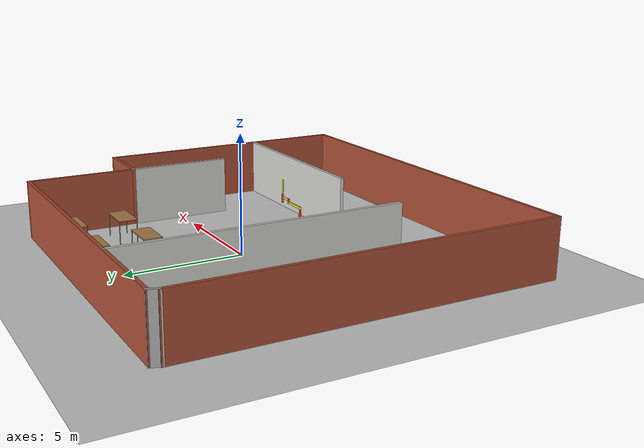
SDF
<sdf version="1.6">
 <world name="default">
  <model name="ground_plane">
   <static>1</static>
   <link name="link">
    <collision name="collision">
     <geometry><plane><normal>0 0 1</normal><size>100 100</size></plane></geometry>
     <surface>
      <contact><collide_bitmask>65535</collide_bitmask></contact>
      <friction><ode><mu>100</mu><mu2>50</mu2></ode></friction>
     </surface>
    </collision>
    <visual name="visual">
     <cast_shadows>0</cast_shadows>
     <geometry><plane><normal>0 0 1</normal><size>100 100</size></plane></geometry>
     <material>
      <script><uri>file://media/materials/scripts/gazebo.material</uri><name>Gazebo/Grey</name></script>
     </material>
    </visual>
   </link>
  </model>
  <model name="gcamp_small_building">
   <pose>0.46855 -1.10251 0 0 -0 0</pose>
   <link name="Wall_11">
    <collision name="Wall_11_Collision">
     <geometry><box><size>12 0.15 2.5</size></box></geometry>
     <pose>0 0 1.25 0 -0 0</pose>
    </collision>
    <visual name="Wall_11_Visual">
     <pose>0 0 1.25 0 -0 0</pose>
     <geometry><box><size>12 0.15 2.5</size></box></geometry>
     <material>
      <script><uri>file://media/materials/scripts/gazebo.material</uri><name>Gazebo/CeilingTiled</name></script>
      <ambient>1 1 1 1</ambient>
     </material>
     <meta><layer>0</layer></meta>
    </visual>
    <pose>-4.16991 2.00561 0 0 -0 -1.5708</pose>
   </link>
   <link name="Wall_13">
    <collision name="Wall_13_Collision">
     <geometry><box><size>8.5 0.15 2.5</size></box></geometry>
     <pose>0 0 1.25 0 -0 0</pose>
    </collision>
    <visual name="Wall_13_Visual">
     <pose>0 0 1.25 0 -0 0</pose>
     <geometry><box><size>8.5 0.15 2.5</size></box></geometry>
     <material>
      <script><uri>file://media/materials/scripts/gazebo.material</uri><name>Gazebo/CeilingTiled</name></script>
      <ambient>1 1 1 1</ambient>
     </material>
     <meta><layer>0</layer></meta>
    </visual>
    <pose>4.29338 -3.92287 0 0 -0 0</pose>
   </link>
   <link name="Wall_15">
    <collision name="Wall_15_Collision">
     <geometry><box><size>4.5 0.15 2.5</size></box></geometry>
     <pose>0 0 1.25 0 -0 0</pose>
    </collision>
    <visual name="Wall_15_Visual">
     <pose>0 0 1.25 0 -0 0</pose>
     <geometry><box><size>4.5 0.15 2.5</size></box></geometry>
     <material>
      <script><uri>file://media/materials/scripts/gazebo.material</uri><name>Gazebo/CeilingTiled</name></script>
      <ambient>1 1 1 1</ambient>
     </material>
     <meta><layer>0</layer></meta>
    </visual>
    <pose>5.8051 1.18826 0 0 -0 -1.5708</pose>
   </link>
   <link name="Wall_3">
    <collision name="Wall_3_Collision">
     <geometry><box><size>15.75 0.15 2.5</size></box></geometry>
     <pose>0 0 1.25 0 -0 0</pose>
    </collision>
    <visual name="Wall_3_Visual">
     <pose>0 0 1.25 0 -0 0</pose>
     <geometry><box><size>15.75 0.15 2.5</size></box></geometry>
     <material>
      <script><uri>file://media/materials/scripts/gazebo.material</uri><name>Gazebo/Bricks</name></script>
      <ambient>1 1 1 1</ambient>
     </material>
     <meta><layer>0</layer></meta>
    </visual>
    <pose>-8.4449 -0.18674 0 0 -0 -1.5708</pose>
   </link>
   <link name="Wall_4">
    <collision name="Wall_4_Collision">
     <geometry><box><size>17 0.15 2.5</size></box></geometry>
     <pose>0 0 1.25 0 -0 0</pose>
    </collision>
    <visual name="Wall_4_Visual">
     <pose>0 0 1.25 0 -0 0</pose>
     <geometry><box><size>17 0.15 2.5</size></box></geometry>
     <material>
      <script><uri>file://media/materials/scripts/gazebo.material</uri><name>Gazebo/Bricks</name></script>
      <ambient>1 1 1 1</ambient>
     </material>
     <meta><layer>0</layer></meta>
    </visual>
    <pose>-0.019899 -7.98674 0 0 -0 0</pose>
   </link>
   <link name="Wall_5">
    <collision name="Wall_5_Collision">
     <geometry><box><size>11.5 0.15 2.5</size></box></geometry>
     <pose>0 0 1.25 0 -0 0</pose>
    </collision>
    <visual name="Wall_5_Visual">
     <pose>0 0 1.25 0 -0 0</pose>
     <geometry><box><size>11.5 0.15 2.5</size></box></geometry>
     <material>
      <script><uri>file://media/materials/scripts/gazebo.material</uri><name>Gazebo/Bricks</name></script>
      <ambient>1 1 1 1</ambient>
     </material>
     <meta><layer>0</layer></meta>
    </visual>
    <pose>8.4051 -2.31174 0 0 -0 1.5708</pose>
   </link>
   <link name="Wall_6">
    <collision name="Wall_6_Collision">
     <geometry><box><size>2.75 0.15 2.5</size></box></geometry>
     <pose>0 0 1.25 0 -0 0</pose>
    </collision>
    <visual name="Wall_6_Visual">
     <pose>0 0 1.25 0 -0 0</pose>
     <geometry><box><size>2.75 0.15 2.5</size></box></geometry>
     <material>
      <script><uri>file://media/materials/scripts/gazebo.material</uri><name>Gazebo/Bricks</name></script>
      <ambient>1 1 1 1</ambient>
     </material>
     <meta><layer>0</layer></meta>
    </visual>
    <pose>7.1051 3.36326 0 0 -0 3.14159</pose>
   </link>
   <link name="Wall_7">
    <collision name="Wall_7_Collision">
     <geometry><box><size>4.75 0.15 2.5</size></box></geometry>
     <pose>0 0 1.25 0 -0 0</pose>
    </collision>
    <visual name="Wall_7_Visual">
     <pose>0 0 1.25 0 -0 0</pose>
     <geometry><box><size>4.75 0.15 2.5</size></box></geometry>
     <material>
      <script><uri>file://media/materials/scripts/gazebo.material</uri><name>Gazebo/Bricks</name></script>
      <ambient>1 1 1 1</ambient>
     </material>
     <meta><layer>0</layer></meta>
    </visual>
    <pose>5.8051 5.66326 0 0 -0 1.5708</pose>
   </link>
   <link name="Wall_8">
    <collision name="Wall_8_Collision">
     <geometry><box><size>14.25 0.15 2.5</size></box></geometry>
     <pose>0 0 1.25 0 -0 0</pose>
    </collision>
    <visual name="Wall_8_Visual">
     <pose>0 0 1.25 0 -0 0</pose>
     <geometry><box><size>14.25 0.15 2.5</size></box></geometry>
     <material>
      <script><uri>file://media/materials/scripts/gazebo.material</uri><name>Gazebo/Bricks</name></script>
      <ambient>1 1 1 1</ambient>
     </material>
     <meta><layer>0</layer></meta>
    </visual>
    <pose>-1.2449 7.96326 0 0 -0 3.14159</pose>
   </link>
   <link name="Wall_9">
    <collision name="Wall_9_Collision">
     <geometry><box><size>0.530789 0.15 2.5</size></box></geometry>
     <pose>0 0 1.25 0 -0 0</pose>
    </collision>
    <visual name="Wall_9_Visual">
     <pose>0 0 1.25 0 -0 0</pose>
     <geometry><box><size>0.530789 0.15 2.5</size></box></geometry>
     <material>
      <script><uri>file://media/materials/scripts/gazebo.material</uri><name>Gazebo/Grey</name></script>
      <ambient>1 1 1 1</ambient>
     </material>
     <meta><layer>0</layer></meta>
    </visual>
    <pose>-8.3699 7.78826 0 0 -0 -1.97569</pose>
   </link>
   <static>1</static>
  </model>
  <model name="table">
   <static>1</static>
   <link name="link">
    <collision name="surface">
     <pose>0 0 1 0 -0 0</pose>
     <geometry><box><size>1.5 0.8 0.03</size></box></geometry>
     <surface><friction><ode><mu>0.6</mu><mu2>0.6</mu2></ode></friction></surface>
    </collision>
    <visual name="visual1">
     <pose>0 0 1 0 -0 0</pose>
     <geometry><box><size>1.5 0.8 0.03</size></box></geometry>
     <material>
      <script><uri>file://media/materials/scripts/gazebo.material</uri><name>Gazebo/Wood</name></script>
     </material>
    </visual>
    <collision name="front_left_leg">
     <pose>0.68 0.38 0.5 0 -0 0</pose>
     <geometry><cylinder><radius>0.02</radius><length>1</length></cylinder></geometry>
    </collision>
    <visual name="front_left_leg">
     <pose>0.68 0.38 0.5 0 -0 0</pose>
     <geometry><cylinder><radius>0.02</radius><length>1</length></cylinder></geometry>
     <material>
      <script><uri>file://media/materials/scripts/gazebo.material</uri><name>Gazebo/Grey</name></script>
     </material>
    </visual>
    <collision name="front_right_leg">
     <pose>0.68 -0.38 0.5 0 -0 0</pose>
     <geometry><cylinder><radius>0.02</radius><length>1</length></cylinder></geometry>
    </collision>
    <visual name="front_right_leg">
     <pose>0.68 -0.38 0.5 0 -0 0</pose>
     <geometry><cylinder><radius>0.02</radius><length>1</length></cylinder></geometry>
     <material>
      <script><uri>file://media/materials/scripts/gazebo.material</uri><name>Gazebo/Grey</name></script>
     </material>
    </visual>
    <collision name="back_right_leg">
     <pose>-0.68 -0.38 0.5 0 -0 0</pose>
     <geometry><cylinder><radius>0.02</radius><length>1</length></cylinder></geometry>
    </collision>
    <visual name="back_right_leg">
     <pose>-0.68 -0.38 0.5 0 -0 0</pose>
     <geometry><cylinder><radius>0.02</radius><length>1</length></cylinder></geometry>
     <material>
      <script><uri>file://media/materials/scripts/gazebo.material</uri><name>Gazebo/Grey</name></script>
     </material>
    </visual>
    <collision name="back_left_leg">
     <pose>-0.68 0.38 0.5 0 -0 0</pose>
     <geometry><cylinder><radius>0.02</radius><length>1</length></cylinder></geometry>
    </collision>
    <visual name="back_left_leg">
     <pose>-0.68 0.38 0.5 0 -0 0</pose>
     <geometry><cylinder><radius>0.02</radius><length>1</length></cylinder></geometry>
     <material>
      <script><uri>file://media/materials/scripts/gazebo.material</uri><name>Gazebo/Grey</name></script>
     </material>
    </visual>
   </link>
   <pose>4.38563 5.61757 0 0 -0 0</pose>
  </model>
  <model name="table_0">
   <static>1</static>
   <link name="link">
    <collision name="surface">
     <pose>0 0 1 0 -0 0</pose>
     <geometry><box><size>1.5 0.8 0.03</size></box></geometry>
     <surface><friction><ode><mu>0.6</mu><mu2>0.6</mu2></ode></friction></surface>
    </collision>
    <visual name="visual1">
     <pose>0 0 1 0 -0 0</pose>
     <geometry><box><size>1.5 0.8 0.03</size></box></geometry>
     <material>
      <script><uri>file://media/materials/scripts/gazebo.material</uri><name>Gazebo/Wood</name></script>
     </material>
    </visual>
    <collision name="front_left_leg">
     <pose>0.68 0.38 0.5 0 -0 0</pose>
     <geometry><cylinder><radius>0.02</radius><length>1</length></cylinder></geometry>
    </collision>
    <visual name="front_left_leg">
     <pose>0.68 0.38 0.5 0 -0 0</pose>
     <geometry><cylinder><radius>0.02</radius><length>1</length></cylinder></geometry>
     <material>
      <script><uri>file://media/materials/scripts/gazebo.material</uri><name>Gazebo/Grey</name></script>
     </material>
    </visual>
    <collision name="front_right_leg">
     <pose>0.68 -0.38 0.5 0 -0 0</pose>
     <geometry><cylinder><radius>0.02</radius><length>1</length></cylinder></geometry>
    </collision>
    <visual name="front_right_leg">
     <pose>0.68 -0.38 0.5 0 -0 0</pose>
     <geometry><cylinder><radius>0.02</radius><length>1</length></cylinder></geometry>
     <material>
      <script><uri>file://media/materials/scripts/gazebo.material</uri><name>Gazebo/Grey</name></script>
     </material>
    </visual>
    <collision name="back_right_leg">
     <pose>-0.68 -0.38 0.5 0 -0 0</pose>
     <geometry><cylinder><radius>0.02</radius><length>1</length></cylinder></geometry>
    </collision>
    <visual name="back_right_leg">
     <pose>-0.68 -0.38 0.5 0 -0 0</pose>
     <geometry><cylinder><radius>0.02</radius><length>1</length></cylinder></geometry>
     <material>
      <script><uri>file://media/materials/scripts/gazebo.material</uri><name>Gazebo/Grey</name></script>
     </material>
    </visual>
    <collision name="back_left_leg">
     <pose>-0.68 0.38 0.5 0 -0 0</pose>
     <geometry><cylinder><radius>0.02</radius><length>1</length></cylinder></geometry>
    </collision>
    <visual name="back_left_leg">
     <pose>-0.68 0.38 0.5 0 -0 0</pose>
     <geometry><cylinder><radius>0.02</radius><length>1</length></cylinder></geometry>
     <material>
      <script><uri>file://media/materials/scripts/gazebo.material</uri><name>Gazebo/Grey</name></script>
     </material>
    </visual>
   </link>
   <pose>4.35793 3.48172 0 0 -0 0</pose>
  </model>
  <model name="bookshelf">
   <static>1</static>
   <link name="link">
    <inertial><mass>1</mass></inertial>
    <collision name="back">
     <pose>0 0.005 0.6 0 -0 0</pose>
     <geometry><box><size>0.9 0.01 1.2</size></box></geometry>
    </collision>
    <visual name="visual1">
     <pose>0 0.005 0.6 0 -0 0</pose>
     <geometry><box><size>0.9 0.01 1.2</size></box></geometry>
     <material>
      <script><uri>file://media/materials/scripts/gazebo.material</uri><name>Gazebo/Wood</name></script>
     </material>
    </visual>
    <collision name="left_side">
     <pose>0.45 -0.195 0.6 0 -0 0</pose>
     <geometry><box><size>0.02 0.4 1.2</size></box></geometry>
    </collision>
    <visual name="visual2">
     <pose>0.45 -0.195 0.6 0 -0 0</pose>
     <geometry><box><size>0.02 0.4 1.2</size></box></geometry>
     <material>
      <script><uri>file://media/materials/scripts/gazebo.material</uri><name>Gazebo/Wood</name></script>
     </material>
    </visual>
    <collision name="right_side">
     <pose>-0.45 -0.195 0.6 0 -0 0</pose>
     <geometry><box><size>0.02 0.4 1.2</size></box></geometry>
    </collision>
    <visual name="visual3">
     <pose>-0.45 -0.195 0.6 0 -0 0</pose>
     <geometry><box><size>0.02 0.4 1.2</size></box></geometry>
     <material>
      <script><uri>file://media/materials/scripts/gazebo.material</uri><name>Gazebo/Wood</name></script>
     </material>
    </visual>
    <collision name="bottom">
     <pose>0 -0.195 0.03 0 -0 0</pose>
     <geometry><box><size>0.88 0.4 0.06</size></box></geometry>
    </collision>
    <visual name="visual4">
     <pose>0 -0.195 0.03 0 -0 0</pose>
     <geometry><box><size>0.88 0.4 0.06</size></box></geometry>
     <material>
      <script><uri>file://media/materials/scripts/gazebo.material</uri><name>Gazebo/Wood</name></script>
     </material>
    </visual>
    <collision name="top">
     <pose>0 -0.195 1.19 0 -0 0</pose>
     <geometry><box><size>0.88 0.4 0.02</size></box></geometry>
    </collision>
    <visual name="visual5">
     <pose>0 -0.195 1.19 0 -0 0</pose>
     <geometry><box><size>0.88 0.4 0.02</size></box></geometry>
     <material>
      <script><uri>file://media/materials/scripts/gazebo.material</uri><name>Gazebo/Wood</name></script>
     </material>
    </visual>
    <collision name="low_shelf">
     <pose>0 -0.195 0.43 0 -0 0</pose>
     <geometry><box><size>0.88 0.4 0.02</size></box></geometry>
    </collision>
    <visual name="visual6">
     <pose>0 -0.195 0.43 0 -0 0</pose>
     <geometry><box><size>0.88 0.4 0.02</size></box></geometry>
     <material>
      <script><uri>file://media/materials/scripts/gazebo.material</uri><name>Gazebo/Wood</name></script>
     </material>
    </visual>
    <collision name="high_shelf">
     <pose>0 -0.195 0.8 0 -0 0</pose>
     <geometry><box><size>0.88 0.4 0.02</size></box></geometry>
    </collision>
    <visual name="visual7">
     <pose>0 -0.195 0.8 0 -0 0</pose>
     <geometry><box><size>0.88 0.4 0.02</size></box></geometry>
     <material>
      <script><uri>file://media/materials/scripts/gazebo.material</uri><name>Gazebo/Wood</name></script>
     </material>
    </visual>
   </link>
   <pose>0.151486 6.62816 0 0 -0 0</pose>
  </model>
  <model name="table_1">
   <static>1</static>
   <link name="link">
    <collision name="surface">
     <pose>0 0 1 0 -0 0</pose>
     <geometry><box><size>1.5 0.8 0.03</size></box></geometry>
     <surface><friction><ode><mu>0.6</mu><mu2>0.6</mu2></ode></friction></surface>
    </collision>
    <visual name="visual1">
     <pose>0 0 1 0 -0 0</pose>
     <geometry><box><size>1.5 0.8 0.03</size></box></geometry>
     <material>
      <script><uri>file://media/materials/scripts/gazebo.material</uri><name>Gazebo/Wood</name></script>
     </material>
    </visual>
    <collision name="front_left_leg">
     <pose>0.68 0.38 0.5 0 -0 0</pose>
     <geometry><cylinder><radius>0.02</radius><length>1</length></cylinder></geometry>
    </collision>
    <visual name="front_left_leg">
     <pose>0.68 0.38 0.5 0 -0 0</pose>
     <geometry><cylinder><radius>0.02</radius><length>1</length></cylinder></geometry>
     <material>
      <script><uri>file://media/materials/scripts/gazebo.material</uri><name>Gazebo/Grey</name></script>
     </material>
    </visual>
    <collision name="front_right_leg">
     <pose>0.68 -0.38 0.5 0 -0 0</pose>
     <geometry><cylinder><radius>0.02</radius><length>1</length></cylinder></geometry>
    </collision>
    <visual name="front_right_leg">
     <pose>0.68 -0.38 0.5 0 -0 0</pose>
     <geometry><cylinder><radius>0.02</radius><length>1</length></cylinder></geometry>
     <material>
      <script><uri>file://media/materials/scripts/gazebo.material</uri><name>Gazebo/Grey</name></script>
     </material>
    </visual>
    <collision name="back_right_leg">
     <pose>-0.68 -0.38 0.5 0 -0 0</pose>
     <geometry><cylinder><radius>0.02</radius><length>1</length></cylinder></geometry>
    </collision>
    <visual name="back_right_leg">
     <pose>-0.68 -0.38 0.5 0 -0 0</pose>
     <geometry><cylinder><radius>0.02</radius><length>1</length></cylinder></geometry>
     <material>
      <script><uri>file://media/materials/scripts/gazebo.material</uri><name>Gazebo/Grey</name></script>
     </material>
    </visual>
    <collision name="back_left_leg">
     <pose>-0.68 0.38 0.5 0 -0 0</pose>
     <geometry><cylinder><radius>0.02</radius><length>1</length></cylinder></geometry>
    </collision>
    <visual name="back_left_leg">
     <pose>-0.68 0.38 0.5 0 -0 0</pose>
     <geometry><cylinder><radius>0.02</radius><length>1</length></cylinder></geometry>
     <material>
      <script><uri>file://media/materials/scripts/gazebo.material</uri><name>Gazebo/Grey</name></script>
     </material>
    </visual>
   </link>
   <pose>1.54863 5.60652 0 0 -0 0</pose>
  </model>
  <model name="table_2">
   <static>1</static>
   <link name="link">
    <collision name="surface">
     <pose>0 0 1 0 -0 0</pose>
     <geometry><box><size>1.5 0.8 0.03</size></box></geometry>
     <surface><friction><ode><mu>0.6</mu><mu2>0.6</mu2></ode></friction></surface>
    </collision>
    <visual name="visual1">
     <pose>0 0 1 0 -0 0</pose>
     <geometry><box><size>1.5 0.8 0.03</size></box></geometry>
     <material>
      <script><uri>file://media/materials/scripts/gazebo.material</uri><name>Gazebo/Wood</name></script>
     </material>
    </visual>
    <collision name="front_left_leg">
     <pose>0.68 0.38 0.5 0 -0 0</pose>
     <geometry><cylinder><radius>0.02</radius><length>1</length></cylinder></geometry>
    </collision>
    <visual name="front_left_leg">
     <pose>0.68 0.38 0.5 0 -0 0</pose>
     <geometry><cylinder><radius>0.02</radius><length>1</length></cylinder></geometry>
     <material>
      <script><uri>file://media/materials/scripts/gazebo.material</uri><name>Gazebo/Grey</name></script>
     </material>
    </visual>
    <collision name="front_right_leg">
     <pose>0.68 -0.38 0.5 0 -0 0</pose>
     <geometry><cylinder><radius>0.02</radius><length>1</length></cylinder></geometry>
    </collision>
    <visual name="front_right_leg">
     <pose>0.68 -0.38 0.5 0 -0 0</pose>
     <geometry><cylinder><radius>0.02</radius><length>1</length></cylinder></geometry>
     <material>
      <script><uri>file://media/materials/scripts/gazebo.material</uri><name>Gazebo/Grey</name></script>
     </material>
    </visual>
    <collision name="back_right_leg">
     <pose>-0.68 -0.38 0.5 0 -0 0</pose>
     <geometry><cylinder><radius>0.02</radius><length>1</length></cylinder></geometry>
    </collision>
    <visual name="back_right_leg">
     <pose>-0.68 -0.38 0.5 0 -0 0</pose>
     <geometry><cylinder><radius>0.02</radius><length>1</length></cylinder></geometry>
     <material>
      <script><uri>file://media/materials/scripts/gazebo.material</uri><name>Gazebo/Grey</name></script>
     </material>
    </visual>
    <collision name="back_left_leg">
     <pose>-0.68 0.38 0.5 0 -0 0</pose>
     <geometry><cylinder><radius>0.02</radius><length>1</length></cylinder></geometry>
    </collision>
    <visual name="back_left_leg">
     <pose>-0.68 0.38 0.5 0 -0 0</pose>
     <geometry><cylinder><radius>0.02</radius><length>1</length></cylinder></geometry>
     <material>
      <script><uri>file://media/materials/scripts/gazebo.material</uri><name>Gazebo/Grey</name></script>
     </material>
    </visual>
   </link>
   <pose>1.5944 3.43185 0 0 -0 0</pose>
  </model>
  <model name="cabinet_0">
   <static>1</static>
   <link name="cabinet_bottom_plate">
    <inertial>
     <pose>0 0 -1 0 -0 0</pose>
     <inertia><ixx>2.05</ixx><ixy>0</ixy><ixz>0</ixz><iyy>2.05</iyy><iyz>0</iyz><izz>2.05</izz></inertia>
     <mass>25</mass>
    </inertial>
    <collision name="cabinet_bottom_plate_geom">
     <pose>0 0 0.01 0 -0 0</pose>
     <geometry><box><size>0.45 0.45 0.02</size></box></geometry>
    </collision>
    <visual name="cabinet_bottom_plate_geom_visual">
     <pose>0 0 0.01 0 -0 0</pose>
     <geometry><box><size>0.45 0.45 0.02</size></box></geometry>
     <material>
      <script><uri>file://media/materials/scripts/gazebo.material</uri><name>Gazebo/Wood</name></script>
     </material>
    </visual>
    <collision name="cabinet_bottom_plate_geom_cabinet_back_plate">
     <pose>0.235 0 0.51 0 -0 0</pose>
     <geometry><box><size>0.02 0.45 1.02</size></box></geometry>
    </collision>
    <visual name="cabinet_bottom_plate_geom_cabinet_back_plate_visual">
     <pose>0.235 0 0.51 0 -0 0</pose>
     <geometry><box><size>0.02 0.45 1.02</size></box></geometry>
     <material>
      <script><uri>file://media/materials/scripts/gazebo.material</uri><name>Gazebo/Wood</name></script>
     </material>
    </visual>
    <collision name="cabinet_bottom_plate_geom_cabinet_left_plate">
     <pose>0 0.235 0.51 0 -0 0</pose>
     <geometry><box><size>0.45 0.02 1.02</size></box></geometry>
    </collision>
    <visual name="cabinet_bottom_plate_geom_cabinet_left_plate_visual">
     <pose>0 0.235 0.51 0 -0 0</pose>
     <geometry><box><size>0.45 0.02 1.02</size></box></geometry>
     <material>
      <script><uri>file://media/materials/scripts/gazebo.material</uri><name>Gazebo/Wood</name></script>
     </material>
    </visual>
    <collision name="cabinet_bottom_plate_geom_cabinet_middle_plate">
     <pose>0 0 0.51 0 -0 0</pose>
     <geometry><box><size>0.45 0.45 0.02</size></box></geometry>
    </collision>
    <visual name="cabinet_bottom_plate_geom_cabinet_middle_plate_visual">
     <pose>0 0 0.51 0 -0 0</pose>
     <geometry><box><size>0.45 0.45 0.02</size></box></geometry>
     <material>
      <script><uri>file://media/materials/scripts/gazebo.material</uri><name>Gazebo/Wood</name></script>
     </material>
    </visual>
    <collision name="cabinet_bottom_plate_geom_cabinet_right_plate">
     <pose>0 -0.235 0.51 0 -0 0</pose>
     <geometry><box><size>0.45 0.02 1.02</size></box></geometry>
    </collision>
    <visual name="cabinet_bottom_plate_geom_cabinet_right_plate_visual">
     <pose>0 -0.235 0.51 0 -0 0</pose>
     <geometry><box><size>0.45 0.02 1.02</size></box></geometry>
     <material>
      <script><uri>file://media/materials/scripts/gazebo.material</uri><name>Gazebo/Wood</name></script>
     </material>
    </visual>
    <collision name="cabinet_bottom_plate_geom_cabinet_top_plate">
     <pose>0 0 1.01 0 -0 0</pose>
     <geometry><box><size>0.45 0.45 0.02</size></box></geometry>
    </collision>
    <visual name="cabinet_bottom_plate_geom_cabinet_top_plate_visual">
     <pose>0 0 1.01 0 -0 0</pose>
     <geometry><box><size>0.45 0.45 0.02</size></box></geometry>
     <material>
      <script><uri>file://media/materials/scripts/gazebo.material</uri><name>Gazebo/Wood</name></script>
     </material>
    </visual>
   </link>
   <pose>-1.07996 6.47759 0 0 -0 0</pose>
  </model>
  <model name="simple_arm">
   <link name="arm_base">
    <inertial>
     <pose>0 0 0.00099 0 -0 0</pose>
     <inertia><ixx>1.11</ixx><ixy>0</ixy><ixz>0</ixz><iyy>100.11</iyy><iyz>0</iyz><izz>1.01</izz></inertia>
     <mass>101</mass>
    </inertial>
    <collision name="arm_base_geom">
     <pose>0 0 0.05 0 -0 0</pose>
     <geometry><box><size>1 1 0.1</size></box></geometry>
    </collision>
    <visual name="arm_base_geom_visual">
     <pose>0 0 0.05 0 -0 0</pose>
     <geometry><box><size>1 1 0.1</size></box></geometry>
     <material>
      <script><uri>file://media/materials/scripts/gazebo.material</uri><name>Gazebo/Blue</name></script>
     </material>
    </visual>
    <collision name="arm_base_geom_arm_trunk">
     <pose>0 0 0.6 0 -0 0</pose>
     <geometry><cylinder><radius>0.05</radius><length>1</length></cylinder></geometry>
    </collision>
    <visual name="arm_base_geom_arm_trunk_visual">
     <pose>0 0 0.6 0 -0 0</pose>
     <geometry><cylinder><radius>0.05</radius><length>1</length></cylinder></geometry>
     <material>
      <script><uri>file://media/materials/scripts/gazebo.material</uri><name>Gazebo/Red</name></script>
     </material>
    </visual>
   </link>
   <link name="arm_shoulder_pan">
    <pose>0 0 1.1 0 -0 0</pose>
    <inertial>
     <pose>0.045455 0 0 0 -0 0</pose>
     <inertia><ixx>0.011</ixx><ixy>0</ixy><ixz>0</ixz><iyy>0.0225</iyy><iyz>0</iyz><izz>0.0135</izz></inertia>
     <mass>1.1</mass>
    </inertial>
    <collision name="arm_shoulder_pan_geom">
     <pose>0 0 0.05 0 -0 0</pose>
     <geometry><cylinder><radius>0.05</radius><length>0.1</length></cylinder></geometry>
    </collision>
    <visual name="arm_shoulder_pan_geom_visual">
     <pose>0 0 0.05 0 -0 0</pose>
     <geometry><cylinder><radius>0.05</radius><length>0.1</length></cylinder></geometry>
     <material>
      <script><uri>file://media/materials/scripts/gazebo.material</uri><name>Gazebo/Yellow</name></script>
     </material>
    </visual>
    <collision name="arm_shoulder_pan_geom_arm_shoulder">
     <pose>0.55 0 0.05 0 -0 0</pose>
     <geometry><box><size>1 0.05 0.1</size></box></geometry>
    </collision>
    <visual name="arm_shoulder_pan_geom_arm_shoulder_visual">
     <pose>0.55 0 0.05 0 -0 0</pose>
     <geometry><box><size>1 0.05 0.1</size></box></geometry>
     <material>
      <script><uri>file://media/materials/scripts/gazebo.material</uri><name>Gazebo/Yellow</name></script>
     </material>
    </visual>
   </link>
   <link name="arm_elbow_pan">
    <pose>1.05 0 1.1 0 -0 0</pose>
    <inertial>
     <pose>0.0875 0 0.083333 0 -0 0</pose>
     <inertia>
      <ixx>0.031</ixx>
      <ixy>0</ixy>
      <ixz>0.005</ixz>
      <iyy>0.07275</iyy>
      <iyz>0</iyz>
      <izz>0.04475</izz>
     </inertia>
     <mass>1.2</mass>
    </inertial>
    <collision name="arm_elbow_pan_geom">
     <pose>0 0 0.1 0 -0 0</pose>
     <geometry><cylinder><radius>0.05</radius><length>0.2</length></cylinder></geometry>
    </collision>
    <visual name="arm_elbow_pan_geom_visual">
     <pose>0 0 0.1 0 -0 0</pose>
     <geometry><cylinder><radius>0.05</radius><length>0.2</length></cylinder></geometry>
     <material>
      <script><uri>file://media/materials/scripts/gazebo.material</uri><name>Gazebo/Red</name></script>
     </material>
    </visual>
    <collision name="arm_elbow_pan_geom_arm_elbow">
     <pose>0.3 0 0.15 0 -0 0</pose>
     <geometry><box><size>0.5 0.03 0.1</size></box></geometry>
    </collision>
    <visual name="arm_elbow_pan_geom_arm_elbow_visual">
     <pose>0.3 0 0.15 0 -0 0</pose>
     <geometry><box><size>0.5 0.03 0.1</size></box></geometry>
     <material>
      <script><uri>file://media/materials/scripts/gazebo.material</uri><name>Gazebo/Yellow</name></script>
     </material>
    </visual>
    <collision name="arm_elbow_pan_geom_arm_wrist">
     <pose>0.55 0 0.15 0 -0 0</pose>
     <geometry><cylinder><radius>0.05</radius><length>0.3</length></cylinder></geometry>
    </collision>
    <visual name="arm_elbow_pan_geom_arm_wrist_visual">
     <pose>0.55 0 0.15 0 -0 0</pose>
     <geometry><cylinder><radius>0.05</radius><length>0.3</length></cylinder></geometry>
     <material>
      <script><uri>file://media/materials/scripts/gazebo.material</uri><name>Gazebo/Red</name></script>
     </material>
    </visual>
   </link>
   <link name="arm_wrist_lift">
    <pose>1.6 0 1.05 0 -0 0</pose>
    <inertial>
     <inertia><ixx>0.01</ixx><ixy>0</ixy><ixz>0</ixz><iyy>0.01</iyy><iyz>0</iyz><izz>0.001</izz></inertia>
     <mass>0.1</mass>
    </inertial>
    <collision name="arm_wrist_lift_geom">
     <pose>0 0 0.5 0 -0 0</pose>
     <geometry><cylinder><radius>0.03</radius><length>1</length></cylinder></geometry>
    </collision>
    <visual name="arm_wrist_lift_geom_visual">
     <pose>0 0 0.5 0 -0 0</pose>
     <geometry><cylinder><radius>0.03</radius><length>1</length></cylinder></geometry>
     <material>
      <script><uri>file://media/materials/scripts/gazebo.material</uri><name>Gazebo/Yellow</name></script>
     </material>
    </visual>
   </link>
   <link name="arm_wrist_roll">
    <pose>1.6 0 1 0 -0 0</pose>
    <inertial>
     <inertia><ixx>0.01</ixx><ixy>0</ixy><ixz>0</ixz><iyy>0.01</iyy><iyz>0</iyz><izz>0.001</izz></inertia>
     <mass>0.1</mass>
    </inertial>
    <collision name="arm_wrist_roll_geom">
     <pose>0 0 0.025 0 -0 0</pose>
     <geometry><cylinder><radius>0.05</radius><length>0.05</length></cylinder></geometry>
    </collision>
    <visual name="arm_wrist_roll_geom_visual">
     <pose>0 0 0.025 0 -0 0</pose>
     <geometry><cylinder><radius>0.05</radius><length>0.05</length></cylinder></geometry>
     <material>
      <script><uri>file://media/materials/scripts/gazebo.material</uri><name>Gazebo/Red</name></script>
     </material>
    </visual>
   </link>
   <joint name="arm_shoulder_pan_joint" type="revolute">
    <parent>arm_base</parent>
    <child>arm_shoulder_pan</child>
    <axis>
     <dynamics>
      <damping>1</damping>
      <friction>0</friction>
      <spring_reference>0</spring_reference>
      <spring_stiffness>0</spring_stiffness>
     </dynamics>
     <xyz>0 0 1</xyz>
     <use_parent_model_frame>1</use_parent_model_frame>
     <limit><lower>-1e+16</lower><upper>1e+16</upper></limit>
    </axis>
   </joint>
   <joint name="arm_elbow_pan_joint" type="revolute">
    <parent>arm_shoulder_pan</parent>
    <child>arm_elbow_pan</child>
    <axis>
     <dynamics>
      <damping>1</damping>
      <friction>0</friction>
      <spring_reference>0</spring_reference>
      <spring_stiffness>0</spring_stiffness>
     </dynamics>
     <xyz>0 0 1</xyz>
     <use_parent_model_frame>1</use_parent_model_frame>
     <limit><lower>-1e+16</lower><upper>1e+16</upper></limit>
    </axis>
   </joint>
   <joint name="arm_wrist_lift_joint" type="prismatic">
    <parent>arm_elbow_pan</parent>
    <child>arm_wrist_lift</child>
    <axis>
     <dynamics>
      <damping>1</damping>
      <friction>0</friction>
      <spring_reference>0</spring_reference>
      <spring_stiffness>0</spring_stiffness>
     </dynamics>
     <limit><lower>-0.8</lower><upper>0.1</upper></limit>
     <xyz>0 0 1</xyz>
     <use_parent_model_frame>1</use_parent_model_frame>
    </axis>
   </joint>
   <joint name="arm_wrist_roll_joint" type="revolute">
    <parent>arm_wrist_lift</parent>
    <child>arm_wrist_roll</child>
    <axis>
     <dynamics>
      <damping>1</damping>
      <friction>0</friction>
      <spring_reference>0</spring_reference>
      <spring_stiffness>0</spring_stiffness>
     </dynamics>
     <limit><lower>-2.99999</lower><upper>2.99999</upper></limit>
     <xyz>0 0 1</xyz>
     <use_parent_model_frame>1</use_parent_model_frame>
    </axis>
   </joint>
   <pose>1.44653 -3.51124 -0.000236 0.000473 -0 -0.008185</pose>
  </model>
 </world>
</sdf>
